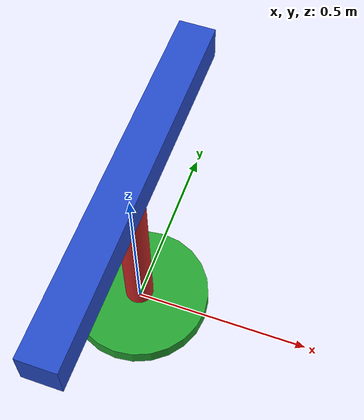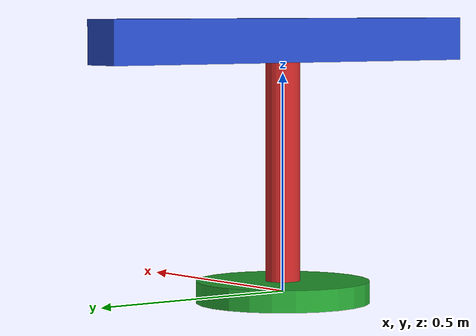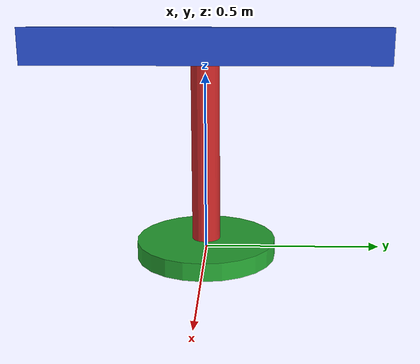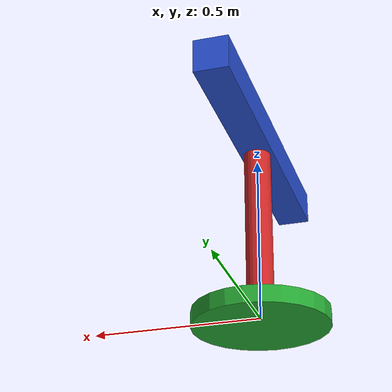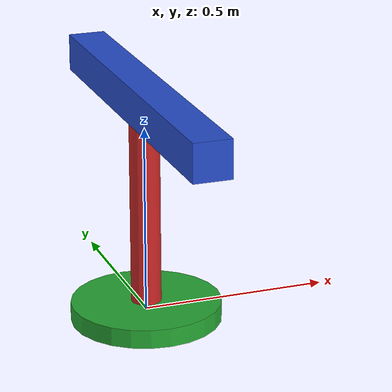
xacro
<?xml version="1.0"?>
<robot xmlns:xacro="http://www.ros.org/wiki/xacro" name="simple_robot">

<!-- Here we define the model parameters -->

<!-- Geometry -->

<xacro:property name="base_link_length" value="0.05"/>
<xacro:property name="base_link_radius" value="0.2"/>

<xacro:property name="first_link_length" value="0.5"/>
<xacro:property name="first_link_radius" value="0.04"/>

<xacro:property name="second_link_length" value="1.0"/>
<xacro:property name="second_link_height" value="0.1"/>
<xacro:property name="second_link_width" value="0.1"/>

<!-- Joint Limits -->

<xacro:property name="limits_revolute_upper" value="3.14"/>
<xacro:property name="limits_revolute_lower" value="-3.14"/>
<xacro:property name="limits_revolute_velocity" value="3.14"/>
<xacro:property name="limits_revolute_effort" value="300"/>

<xacro:property name="limits_prismatic_upper" value="0.5"/>
<xacro:property name="limits_prismatic_lower" value="-0.5"/>
<xacro:property name="limits_prismatic_velocity" value="0.8"/>
<xacro:property name="limits_prismatic_effort" value="300"/>

<xacro:include filename="$(find robot_model3_pkg)/urdf/robot.gazebo"/>

    <link name="base_link">
        <visual>
            <geometry>
                <cylinder radius="${base_link_radius}" length="${base_link_length}"/>

                <!-- origin - the reference frame of the visual element with respect to the reference frame of the link -->
                <!-- rpy - r: roll, p: pitch and y: yaw -->
                <!-- xyz - x, y, z offsets -->

                <origin xyz="0 0 0" rpy="0 0 0"/>
            </geometry>
        </visual>
        <collision>
            <geometry>
                <cylinder radius="${base_link_radius}" length="${base_link_length}"/>
            </geometry>
            <origin xyz="0 0 0" rpy="0 0 0"/>
        </collision>
        <inertial>
            <origin xyz="0 0 0" rpy="0 0 0"/>
            <mass value="1"/>
            <inertia ixx="100" ixy="0" ixz="0" iyy="100" iyz="0" izz="100"/>
        </inertial>
    </link>

    <joint name="joint_1" type="revolute">
        <parent link="base_link"/>
        <child link="first_link"/>
        <origin xyz="0 0 ${base_link_length/2}"/>
        <axis xyz="0 0 1"/>
        <limit lower="${limits_revolute_lower}" upper="${limits_revolute_upper}" effort="${limits_revolute_effort}" velocity="${limits_revolute_velocity}"/>
    </joint>

    <link name="first_link">
        <visual>
            <geometry>
                <cylinder radius="${first_link_radius}" length="${first_link_length}"/>
            </geometry>
            <origin xyz="0 0 ${first_link_length/2}" rpy="0 0 0"/>
        </visual>

        <collision>
            <geometry>
                <cylinder radius="${first_link_radius}" length="${first_link_length}"/>
            </geometry>
            <origin xyz="0 0 ${first_link_length/2}" rpy="0 0 0"/>
        </collision>

        <inertial>
            <origin xyz="0 0 0" rpy="0 0 0"/>
            <mass value="1"/>
            <inertia ixx="100" ixy="0" ixz="0" iyy="100" iyz="0" izz="100"/>
        </inertial>
    </link>

    <joint name="joint_2" type="prismatic">
        <parent link="first_link"/>
        <child link="second_link"/>
        <origin xyz="0 0 ${first_link_length}"/>
        <axis xyz="0 1 0"/>
        <limit lower="${limits_prismatic_lower}" upper="${limits_prismatic_upper}" effort="${limits_prismatic_effort}" velocity="${limits_prismatic_velocity}"/>
    </joint>

    <link name="second_link">
        <visual>
            <geometry>
                <box size="${second_link_width} ${second_link_length} ${second_link_height}"/>
            </geometry>
            <origin xyz="0 0 ${second_link_height/2}" rpy="0 0 0"/>
        </visual>

        <collision>
            <geometry>
                <box size="${second_link_width} ${second_link_length} ${second_link_height}"/>
            </geometry>
            <origin xyz="0 0 ${second_link_height/2}" rpy="0 0 0"/>
        </collision>

        <inertial>
            <origin xyz="0 0 ${second_link_height/2}" rpy="0 0 0"/>
            <mass value="1"/>
            <inertia ixx="100" ixy="0" ixz="0" iyy="100" iyz="0" izz="100"/>
        </inertial>
    </link>
</robot>
